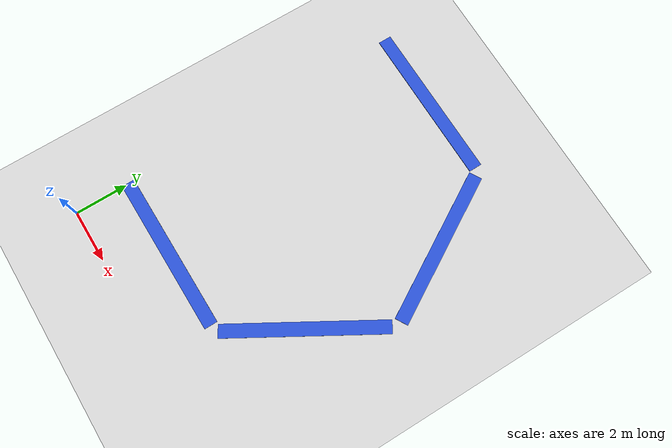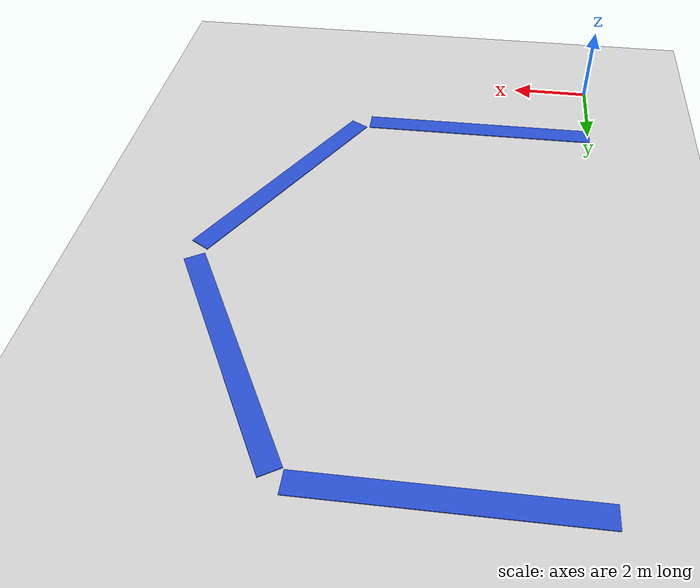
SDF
<sdf version="1.6">
 <world name="default">
  <light name="sun" type="directional">
   <pose>0 0 10 0 -0 0</pose>
   <diffuse>0.8 0.8 0.8 1</diffuse>
   <specular>0.2 0.2 0.2 1</specular>
   <attenuation>
    <range>1000</range>
    <constant>0.9</constant>
    <linear>0.01</linear>
    <quadratic>0.001</quadratic>
   </attenuation>
   <direction>-0.5 0.1 -0.9</direction>
  </light>
  <model name="ground_plane">
   <static>1</static>
   <link name="link">
    <collision name="collision">
     <geometry><plane><normal>0 0 1</normal><size>100 100</size></plane></geometry>
     <surface><friction><ode><mu>100</mu><mu2>50</mu2></ode></friction></surface>
    </collision>
    <visual name="visual">
     <cast_shadows>0</cast_shadows>
     <geometry><plane><normal>0 0 1</normal><size>100 100</size></plane></geometry>
     <material>
      <script><uri>file://media/materials/scripts/gazebo.material</uri><name>Gazebo/Grey</name></script>
     </material>
    </visual>
   </link>
  </model>
  <gravity>0 0 -9.8</gravity>
  <magnetic_field>6e-06 2.3e-05 -4.2e-05</magnetic_field>
  <atmosphere type="adiabatic"/>
  <physics name="default_physics" default="0" type="ode">
   <max_step_size>0.001</max_step_size>
   <real_time_factor>1</real_time_factor>
   <real_time_update_rate>1000</real_time_update_rate>
  </physics>
  <scene><ambient>0.4 0.4 0.4 1</ambient><background>0.7 0.7 0.7 1</background><shadows>1</shadows></scene>
  <spherical_coordinates>
   <surface_model>EARTH_WGS84</surface_model>
   <latitude_deg>0</latitude_deg>
   <longitude_deg>0</longitude_deg>
   <elevation>0</elevation>
   <heading_deg>0</heading_deg>
  </spherical_coordinates>
  <model name="unit_box_0_0_0_0">
   <link name="link">
    <pose>4.03611 1.74012 0 0 -0 0</pose>
    <inertial>
     <mass>0.137918</mass>
     <inertia>
      <ixx>0.00283246</ixx>
      <ixy>0</ixy>
      <ixz>0</ixz>
      <iyy>1.39815</iyy>
      <iyz>0</iyz>
      <izz>1.40096</izz>
     </inertia>
    </inertial>
    <visual name="visual">
     <geometry><box><size>6 0.495787 0.025162</size></box></geometry>
     <material>
      <script><name>Gazebo/Blue</name><uri>file://media/materials/scripts/gazebo.material</uri></script>
      <shader type="vertex"><normal_map>__default__</normal_map></shader>
     </material>
    </visual>
    <collision name="collision">
     <geometry><box><size>11.0295 0.495787 0.025162</size></box></geometry>
     <surface>
      <friction>
       <ode><mu>1</mu><mu2>1</mu2><fdir1>0 0 0</fdir1><slip1>0</slip1><slip2>0</slip2></ode>
       <torsional>
        <coefficient>1</coefficient>
        <patch_radius>0</patch_radius>
        <surface_radius>0</surface_radius>
        <use_patch_radius>1</use_patch_radius>
        <ode><slip>0</slip></ode>
       </torsional>
      </friction>
      <bounce><restitution_coefficient>0</restitution_coefficient><threshold>1e+06</threshold></bounce>
      <contact>
       <collide_without_contact>0</collide_without_contact>
       <collide_without_contact_bitmask>1</collide_without_contact_bitmask>
       <collide_bitmask>1</collide_bitmask>
       <ode>
        <soft_cfm>0</soft_cfm>
        <soft_erp>0.2</soft_erp>
        <kp>1e+13</kp>
        <kd>1</kd>
        <max_vel>0.01</max_vel>
        <min_depth>0</min_depth>
       </ode>
       <bullet>
        <split_impulse>1</split_impulse>
        <split_impulse_penetration_threshold>-0.01</split_impulse_penetration_threshold>
        <soft_cfm>0</soft_cfm>
        <soft_erp>0.2</soft_erp>
        <kp>1e+13</kp>
        <kd>1</kd>
       </bullet>
      </contact>
     </surface>
    </collision>
   </link>
   <static>0</static>
   <pose>-1.05095 0.334896 0.016389 0.001147 -0.003713 0.009372</pose>
  </model>
  <model name="unit_box_0_0_0_0_clone_1">
   <link name="link">
    <pose>4.03611 1.74012 -0 0 -0 1.04</pose>
    <inertial>
     <mass>0.137918</mass>
     <inertia>
      <ixx>0.00283246</ixx>
      <ixy>0</ixy>
      <ixz>0</ixz>
      <iyy>1.39815</iyy>
      <iyz>0</iyz>
      <izz>1.40096</izz>
     </inertia>
    </inertial>
    <visual name="visual">
     <geometry><box><size>6 0.495787 0.025162</size></box></geometry>
     <material>
      <script><name>Gazebo/Blue</name><uri>file://media/materials/scripts/gazebo.material</uri></script>
      <shader type="vertex"><normal_map>__default__</normal_map></shader>
      <ambient>0 0 1 1</ambient>
      <diffuse>0 0 1 1</diffuse>
      <specular>0.1 0.1 0.1 1</specular>
      <emissive>0 0 0 1</emissive>
     </material>
    </visual>
    <collision name="collision">
     <geometry><box><size>11.0295 0.495787 0.025162</size></box></geometry>
     <surface>
      <friction>
       <ode><mu>1</mu><mu2>1</mu2><fdir1>0 0 0</fdir1><slip1>0</slip1><slip2>0</slip2></ode>
       <torsional>
        <coefficient>1</coefficient>
        <patch_radius>0</patch_radius>
        <surface_radius>0</surface_radius>
        <use_patch_radius>1</use_patch_radius>
        <ode><slip>0</slip></ode>
       </torsional>
      </friction>
      <bounce><restitution_coefficient>0</restitution_coefficient><threshold>1e+06</threshold></bounce>
      <contact>
       <collide_without_contact>0</collide_without_contact>
       <collide_without_contact_bitmask>1</collide_without_contact_bitmask>
       <collide_bitmask>1</collide_bitmask>
       <ode>
        <soft_cfm>0</soft_cfm>
        <soft_erp>0.2</soft_erp>
        <kp>1e+13</kp>
        <kd>1</kd>
        <max_vel>0.01</max_vel>
        <min_depth>0</min_depth>
       </ode>
       <bullet>
        <split_impulse>1</split_impulse>
        <split_impulse_penetration_threshold>-0.01</split_impulse_penetration_threshold>
        <soft_cfm>0</soft_cfm>
        <soft_erp>0.2</soft_erp>
        <kp>1e+13</kp>
        <kd>1</kd>
       </bullet>
      </contact>
     </surface>
    </collision>
   </link>
   <static>0</static>
   <pose>3.73379 3.06152 0.014698 0.001738 -0.002818 0.011987</pose>
  </model>
  <model name="unit_box_0_0_0_0_clone_2">
   <link name="link">
    <pose>4.03611 1.74012 -0 0 -0 2.09</pose>
    <inertial>
     <mass>0.137918</mass>
     <inertia>
      <ixx>0.00283246</ixx>
      <ixy>0</ixy>
      <ixz>0</ixz>
      <iyy>1.39815</iyy>
      <iyz>0</iyz>
      <izz>1.40096</izz>
     </inertia>
    </inertial>
    <visual name="visual">
     <geometry><box><size>6 0.495787 0.025162</size></box></geometry>
     <material>
      <script><name>Gazebo/Blue</name><uri>file://media/materials/scripts/gazebo.material</uri></script>
      <shader type="vertex"><normal_map>__default__</normal_map></shader>
      <ambient>0 0 1 1</ambient>
      <diffuse>0 0 1 1</diffuse>
      <specular>0.1 0.1 0.1 1</specular>
      <emissive>0 0 0 1</emissive>
     </material>
    </visual>
    <collision name="collision">
     <geometry><box><size>11.0295 0.495787 0.025162</size></box></geometry>
     <surface>
      <friction>
       <ode><mu>1</mu><mu2>1</mu2><fdir1>0 0 0</fdir1><slip1>0</slip1><slip2>0</slip2></ode>
       <torsional>
        <coefficient>1</coefficient>
        <patch_radius>0</patch_radius>
        <surface_radius>0</surface_radius>
        <use_patch_radius>1</use_patch_radius>
        <ode><slip>0</slip></ode>
       </torsional>
      </friction>
      <bounce><restitution_coefficient>0</restitution_coefficient><threshold>1e+06</threshold></bounce>
      <contact>
       <collide_without_contact>0</collide_without_contact>
       <collide_without_contact_bitmask>1</collide_without_contact_bitmask>
       <collide_bitmask>1</collide_bitmask>
       <ode>
        <soft_cfm>0</soft_cfm>
        <soft_erp>0.2</soft_erp>
        <kp>1e+13</kp>
        <kd>1</kd>
        <max_vel>0.01</max_vel>
        <min_depth>0</min_depth>
       </ode>
       <bullet>
        <split_impulse>1</split_impulse>
        <split_impulse_penetration_threshold>-0.01</split_impulse_penetration_threshold>
        <soft_cfm>0</soft_cfm>
        <soft_erp>0.2</soft_erp>
        <kp>1e+13</kp>
        <kd>1</kd>
       </bullet>
      </contact>
     </surface>
    </collision>
   </link>
   <static>0</static>
   <pose>3.7262 8.61829 0.012773 -2.3e-05 4.1e-05 0.01031</pose>
  </model>
  <model name="unit_box_0_0_0_0_clone_0">
   <link name="link">
    <pose>4.03611 1.74012 0 0 -0 0</pose>
    <inertial>
     <mass>0.137918</mass>
     <inertia>
      <ixx>0.00283246</ixx>
      <ixy>0</ixy>
      <ixz>0</ixz>
      <iyy>1.39815</iyy>
      <iyz>0</iyz>
      <izz>1.40096</izz>
     </inertia>
    </inertial>
    <visual name="visual">
     <geometry><box><size>6 0.495787 0.025162</size></box></geometry>
     <material>
      <script><name>Gazebo/Blue</name><uri>file://media/materials/scripts/gazebo.material</uri></script>
      <shader type="vertex"><normal_map>__default__</normal_map></shader>
      <ambient>0 0 1 1</ambient>
      <diffuse>0 0 1 1</diffuse>
      <specular>0.1 0.1 0.1 1</specular>
      <emissive>0 0 0 1</emissive>
     </material>
    </visual>
    <collision name="collision">
     <geometry><box><size>11.0295 0.495787 0.025162</size></box></geometry>
     <surface>
      <friction>
       <ode><mu>1</mu><mu2>1</mu2><fdir1>0 0 0</fdir1><slip1>0</slip1><slip2>0</slip2></ode>
       <torsional>
        <coefficient>1</coefficient>
        <patch_radius>0</patch_radius>
        <surface_radius>0</surface_radius>
        <use_patch_radius>1</use_patch_radius>
        <ode><slip>0</slip></ode>
       </torsional>
      </friction>
      <bounce><restitution_coefficient>0</restitution_coefficient><threshold>1e+06</threshold></bounce>
      <contact>
       <collide_without_contact>0</collide_without_contact>
       <collide_without_contact_bitmask>1</collide_without_contact_bitmask>
       <collide_bitmask>1</collide_bitmask>
       <ode>
        <soft_cfm>0</soft_cfm>
        <soft_erp>0.2</soft_erp>
        <kp>1e+13</kp>
        <kd>1</kd>
        <max_vel>0.01</max_vel>
        <min_depth>0</min_depth>
       </ode>
       <bullet>
        <split_impulse>1</split_impulse>
        <split_impulse_penetration_threshold>-0.01</split_impulse_penetration_threshold>
        <soft_cfm>0</soft_cfm>
        <soft_erp>0.2</soft_erp>
        <kp>1e+13</kp>
        <kd>1</kd>
       </bullet>
      </contact>
     </surface>
    </collision>
   </link>
   <static>0</static>
   <pose>-1.03352 11.3397 0.012581 0 -0 0.009615</pose>
  </model>
 </world>
</sdf>
